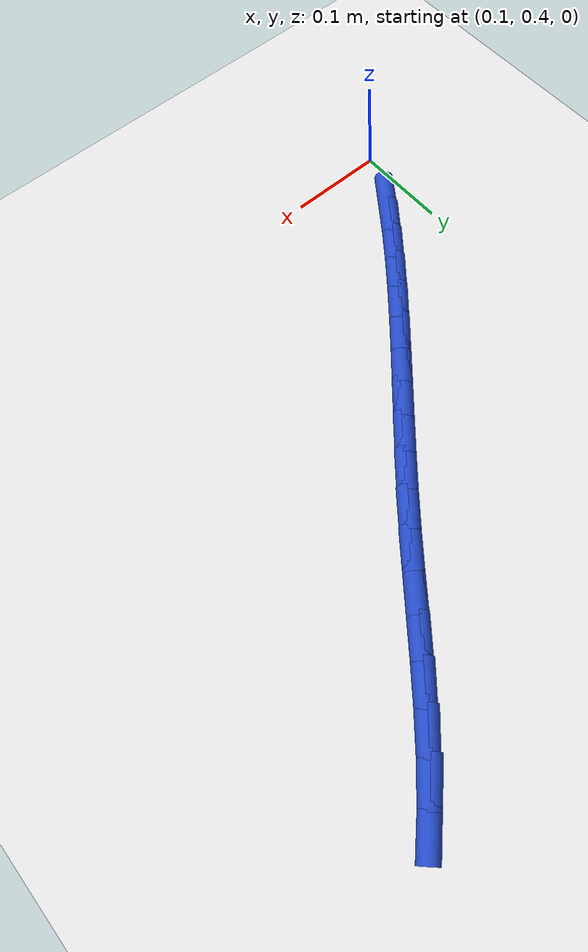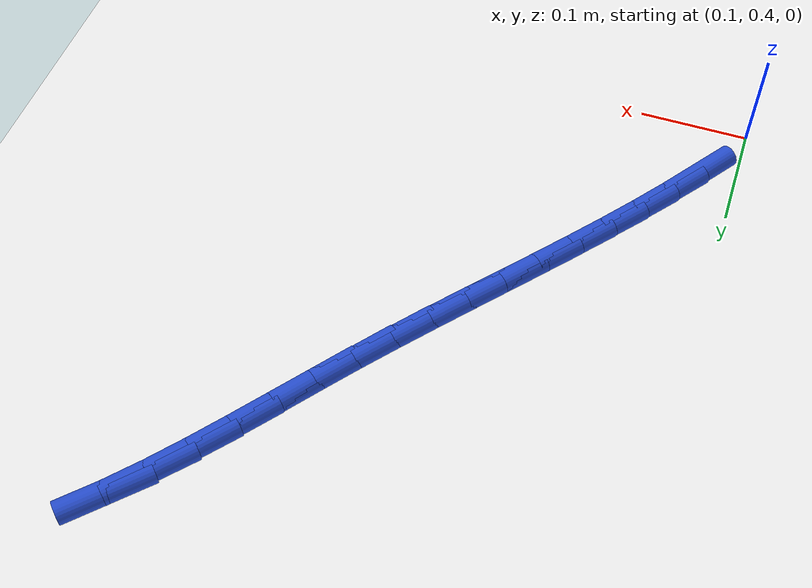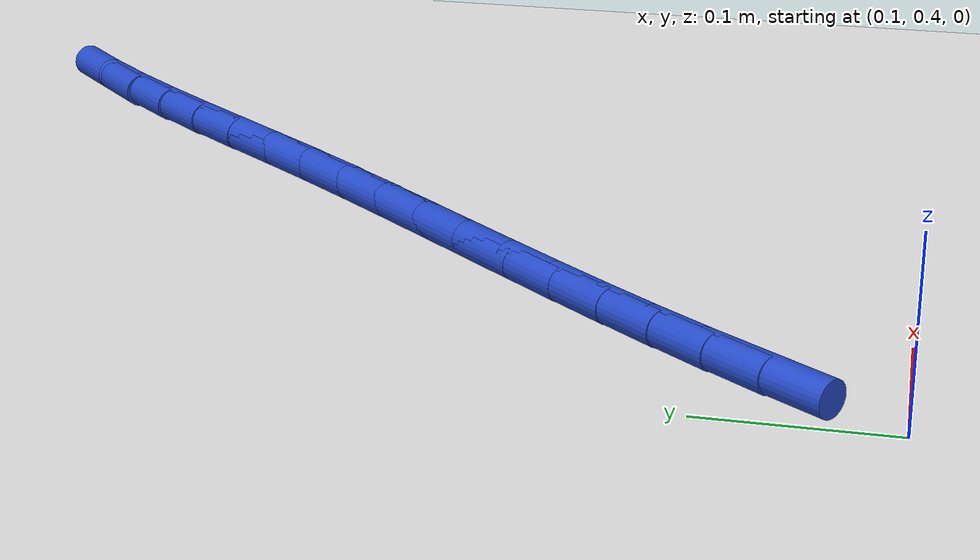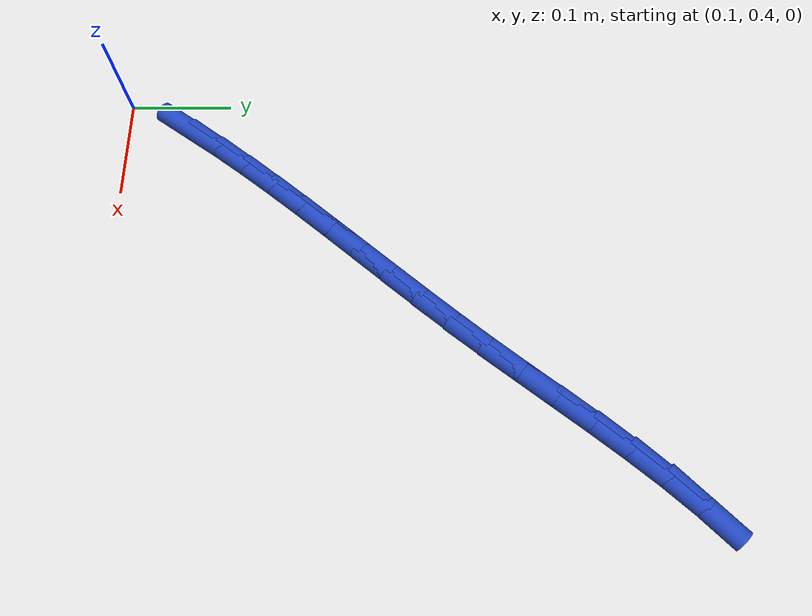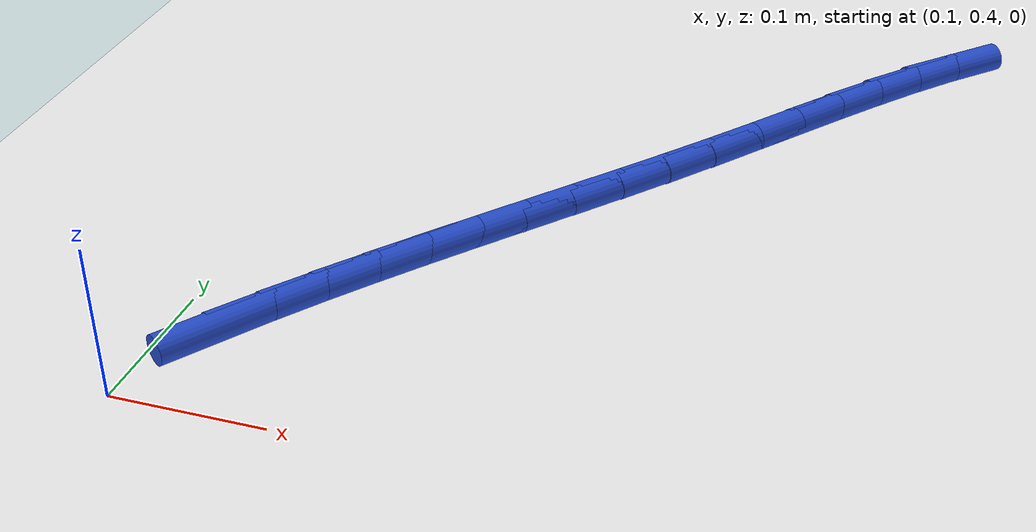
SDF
<sdf version="1.6">
 <world name="default">
  <model name="ground_plane">
   <static>1</static>
   <link name="link">
    <collision name="collision">
     <geometry><plane><normal>0 0 1</normal><size>100 100</size></plane></geometry>
     <surface><friction><ode><mu>100</mu><mu2>50</mu2></ode></friction></surface>
    </collision>
    <visual name="visual">
     <cast_shadows>0</cast_shadows>
     <geometry><plane><normal>0 0 1</normal><size>100 100</size></plane></geometry>
     <material>
      <script><uri>file://media/materials/scripts/gazebo.material</uri><name>Gazebo/WhiteGlow</name></script>
     </material>
    </visual>
   </link>
  </model>
  <model name="line">
   <link name="link_14">
    <pose>0.13454467493125222 0.46753995657458697 0.01 0 1.57 0.952599108806189</pose>
    <collision name="collision">
     <geometry><cylinder><radius>0.01</radius><length>0.08</length></cylinder></geometry>
    </collision>
    <visual name="visual">
     <material>
      <script><name>Gazebo/Blue</name><uri>file://media/materials/scripts/gazebo.material</uri></script>
     </material>
     <geometry><cylinder><radius>0.01</radius><length>0.08</length></cylinder></geometry>
    </visual>
   </link>
   <link name="link_15">
    <pose>0.1548681205003997 0.49611659539180686 0.01 0 1.57 0.9256370994258802</pose>
    <collision name="collision">
     <geometry><cylinder><radius>0.01</radius><length>0.08</length></cylinder></geometry>
    </collision>
    <visual name="visual">
     <material>
      <script><name>Gazebo/Blue</name><uri>file://media/materials/scripts/gazebo.material</uri></script>
     </material>
     <geometry><cylinder><radius>0.01</radius><length>0.08</length></cylinder></geometry>
    </visual>
   </link>
   <link name="link_16">
    <pose>0.17611358372238828 0.524346241300735 0.01 0 1.57 0.9039143389724964</pose>
    <collision name="collision">
     <geometry><cylinder><radius>0.01</radius><length>0.08</length></cylinder></geometry>
    </collision>
    <visual name="visual">
     <material>
      <script><name>Gazebo/Blue</name><uri>file://media/materials/scripts/gazebo.material</uri></script>
     </material>
     <geometry><cylinder><radius>0.01</radius><length>0.08</length></cylinder></geometry>
    </visual>
   </link>
   <link name="link_17">
    <pose>0.1981419557234298 0.5523297367656436 0.01 0 1.57 0.8873201236100704</pose>
    <collision name="collision">
     <geometry><cylinder><radius>0.01</radius><length>0.08</length></cylinder></geometry>
    </collision>
    <visual name="visual">
     <material>
      <script><name>Gazebo/Blue</name><uri>file://media/materials/scripts/gazebo.material</uri></script>
     </material>
     <geometry><cylinder><radius>0.01</radius><length>0.08</length></cylinder></geometry>
    </visual>
   </link>
   <link name="link_18">
    <pose>0.22081412762973585 0.5801679242508053 0.01 0 1.57 0.8757305470665164</pose>
    <collision name="collision">
     <geometry><cylinder><radius>0.01</radius><length>0.08</length></cylinder></geometry>
    </collision>
    <visual name="visual">
     <material>
      <script><name>Gazebo/Blue</name><uri>file://media/materials/scripts/gazebo.material</uri></script>
     </material>
     <geometry><cylinder><radius>0.01</radius><length>0.08</length></cylinder></geometry>
    </visual>
   </link>
   <link name="link_19">
    <pose>0.24399099056751844 0.607961646220493 0.01 0 1.57 0.8690213487096884</pose>
    <collision name="collision">
     <geometry><cylinder><radius>0.01</radius><length>0.08</length></cylinder></geometry>
    </collision>
    <visual name="visual">
     <material>
      <script><name>Gazebo/Blue</name><uri>file://media/materials/scripts/gazebo.material</uri></script>
     </material>
     <geometry><cylinder><radius>0.01</radius><length>0.08</length></cylinder></geometry>
    </visual>
   </link>
   <link name="link_20">
    <pose>0.26753343566298915 0.6358117451389789 0.01 0 1.57 0.8670759920582112</pose>
    <collision name="collision">
     <geometry><cylinder><radius>0.01</radius><length>0.08</length></cylinder></geometry>
    </collision>
    <visual name="visual">
     <material>
      <script><name>Gazebo/Blue</name><uri>file://media/materials/scripts/gazebo.material</uri></script>
     </material>
     <geometry><cylinder><radius>0.01</radius><length>0.08</length></cylinder></geometry>
    </visual>
   </link>
   <link name="link_21">
    <pose>0.2913023540423597 0.6638190634705357 0.01 0 1.57 0.8697896640838979</pose>
    <collision name="collision">
     <geometry><cylinder><radius>0.01</radius><length>0.08</length></cylinder></geometry>
    </collision>
    <visual name="visual">
     <material>
      <script><name>Gazebo/Blue</name><uri>file://media/materials/scripts/gazebo.material</uri></script>
     </material>
     <geometry><cylinder><radius>0.01</radius><length>0.08</length></cylinder></geometry>
    </visual>
   </link>
   <link name="link_22">
    <pose>0.3151586368318421 0.692084443679436 0.01 0 1.57 0.8770698273195979</pose>
    <collision name="collision">
     <geometry><cylinder><radius>0.01</radius><length>0.08</length></cylinder></geometry>
    </collision>
    <visual name="visual">
     <material>
      <script><name>Gazebo/Blue</name><uri>file://media/materials/scripts/gazebo.material</uri></script>
     </material>
     <geometry><cylinder><radius>0.01</radius><length>0.08</length></cylinder></geometry>
    </visual>
   </link>
   <link name="link_23">
    <pose>0.33896317515764784 0.7207087282299524 0.01 0 1.57 0.8888338310618514</pose>
    <collision name="collision">
     <geometry><cylinder><radius>0.01</radius><length>0.08</length></cylinder></geometry>
    </collision>
    <visual name="visual">
     <material>
      <script><name>Gazebo/Blue</name><uri>file://media/materials/scripts/gazebo.material</uri></script>
     </material>
     <geometry><cylinder><radius>0.01</radius><length>0.08</length></cylinder></geometry>
    </visual>
   </link>
   <link name="link_24">
    <pose>0.3625768601459888 0.7497927595863572 0.01 0 1.57 0.9043316246221482</pose>
    <collision name="collision">
     <geometry><cylinder><radius>0.01</radius><length>0.08</length></cylinder></geometry>
    </collision>
    <visual name="visual">
     <material>
      <script><name>Gazebo/Blue</name><uri>file://media/materials/scripts/gazebo.material</uri></script>
     </material>
     <geometry><cylinder><radius>0.01</radius><length>0.08</length></cylinder></geometry>
    </visual>
   </link>
   <link name="link_25">
    <pose>0.3858759281696378 0.7794158949197898 0.01 0 1.57 0.9146816644497419</pose>
    <collision name="collision">
     <geometry><cylinder><radius>0.01</radius><length>0.08</length></cylinder></geometry>
    </collision>
    <visual name="visual">
     <material>
      <script><name>Gazebo/Blue</name><uri>file://media/materials/scripts/gazebo.material</uri></script>
     </material>
     <geometry><cylinder><radius>0.01</radius><length>0.08</length></cylinder></geometry>
    </visual>
   </link>
   <link name="link_26">
    <pose>0.4089398232527042 0.8093729748940368 0.01 0 1.57 0.9137533687731932</pose>
    <collision name="collision">
     <geometry><cylinder><radius>0.01</radius><length>0.08</length></cylinder></geometry>
    </collision>
    <visual name="visual">
     <material>
      <script><name>Gazebo/Blue</name><uri>file://media/materials/scripts/gazebo.material</uri></script>
     </material>
     <geometry><cylinder><radius>0.01</radius><length>0.08</length></cylinder></geometry>
    </visual>
   </link>
   <link name="link_27">
    <pose>0.43199192764884187 0.8392573083797915 0.01 0 1.57 0.9013404433406285</pose>
    <collision name="collision">
     <geometry><cylinder><radius>0.01</radius><length>0.08</length></cylinder></geometry>
    </collision>
    <visual name="visual">
     <material>
      <script><name>Gazebo/Blue</name><uri>file://media/materials/scripts/gazebo.material</uri></script>
     </material>
     <geometry><cylinder><radius>0.01</radius><length>0.08</length></cylinder></geometry>
    </visual>
   </link>
   <link name="link_28">
    <pose>0.4552586713110886 0.8686579370817289 0.01 0 1.57 0.8770351752608088</pose>
    <collision name="collision">
     <geometry><cylinder><radius>0.01</radius><length>0.08</length></cylinder></geometry>
    </collision>
    <visual name="visual">
     <material>
      <script><name>Gazebo/Blue</name><uri>file://media/materials/scripts/gazebo.material</uri></script>
     </material>
     <geometry><cylinder><radius>0.01</radius><length>0.08</length></cylinder></geometry>
    </visual>
   </link>
   <link name="link_29">
    <pose>0.47896648419248233 0.8971639027045247 0.01 0 1.57 0.8401180100385603</pose>
    <collision name="collision">
     <geometry><cylinder><radius>0.01</radius><length>0.08</length></cylinder></geometry>
    </collision>
    <visual name="visual">
     <material>
      <script><name>Gazebo/Blue</name><uri>file://media/materials/scripts/gazebo.material</uri></script>
     </material>
     <geometry><cylinder><radius>0.01</radius><length>0.08</length></cylinder></geometry>
    </visual>
   </link>
   <link name="link_30">
    <pose>0.5033417962460612 0.924364246952855 0.01 0 1.57 0.7896249499492259</pose>
    <collision name="collision">
     <geometry><cylinder><radius>0.01</radius><length>0.08</length></cylinder></geometry>
    </collision>
    <visual name="visual">
     <material>
      <script><name>Gazebo/Blue</name><uri>file://media/materials/scripts/gazebo.material</uri></script>
     </material>
     <geometry><cylinder><radius>0.01</radius><length>0.08</length></cylinder></geometry>
    </visual>
   </link>
  </model>
 </world>
</sdf>
